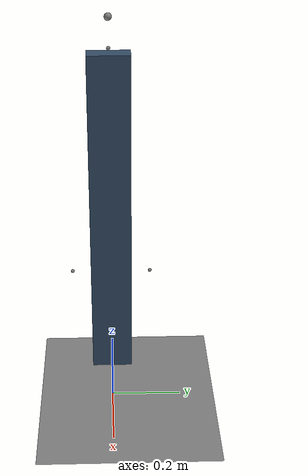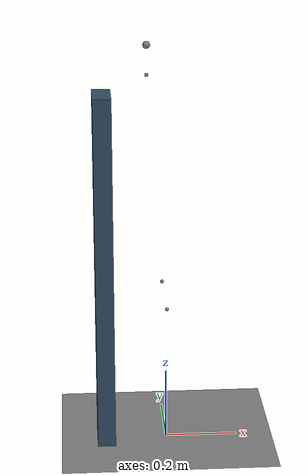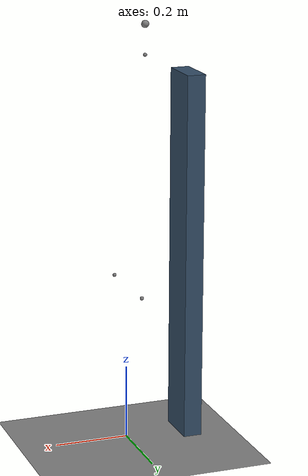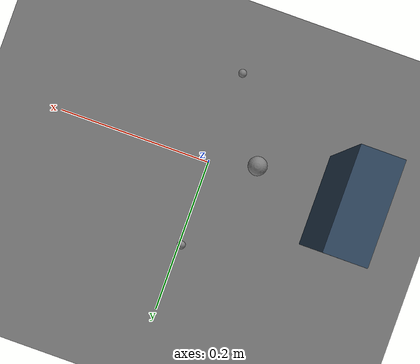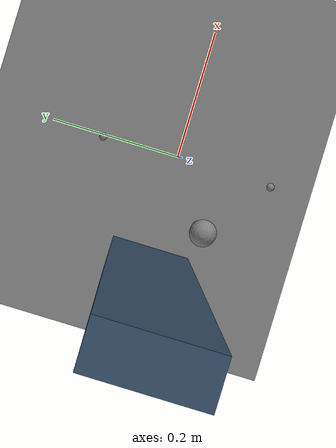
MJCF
<?xml version='1.0' encoding='utf-8'?>
<mujoco model="robobuddy-asimov-actuator-mounted-v1">
  <compiler angle="radian" autolimits="true" />
  <option integrator="implicitfast" solver="Newton" iterations="10" ls_iterations="20" timestep="0.0025" noslip_iterations="5" impratio="10" cone="elliptic" />
  <default>
    <joint frictionloss="0" />
    <default class="motor">
      <joint damping="0" />
    </default>
    <default class="passive_upper">
      <joint damping="15.0" stiffness="80.0" springref="0" />
    </default>
    <default class="visual">
      <geom contype="0" conaffinity="0" group="2" density="0" />
    </default>
    <default class="collision">
      <geom group="3" rgba=".2 .6 .2 .3" type="capsule" contype="1" conaffinity="1" priority="1" condim="6" />
      <default class="foot_capsule">
        <geom type="capsule" size="0.005" condim="3" friction="0.6" />
      </default>
      <default class="body_capsule">
        <geom type="capsule" size="0.05" />
      </default>
    </default>
  </default>
  <visual>
    <global offwidth="1920" offheight="1080" />
  </visual>
  <worldbody>
    <light pos="1 0 3.5" dir="0 0 -1" directional="true" />
    <geom name="floor" size="0 0 0.05" type="plane" friction="1.2 0.5 0.1" condim="3" />
    <light directional="true" diffuse=".4 .4 .4" specular="0.1 0.1 0.1" pos="0 0 5.0" dir="0 0 -1" castshadow="false" />
    <light directional="true" diffuse=".6 .6 .6" specular="0.2 0.2 0.2" pos="0 0 4" dir="0 0 -1" />
    <body name="pelvis_link" pos="0 0 1.05" quat="1 0 0 0">
      <site name="imu_in_pelvis" size="0.01" pos="-0.05 0 0.08" />
      <inertial pos="-0.0540918323179141 -3.48259522403486E-05 -0.0156255182184312" mass="3.50691251175897" fullinertia="0.00552189690363016 0.00626668820315558 0.00504655399919599 4.55841164433384E-06 -7.80273388403568E-05 1.10177467151231E-07" />
      <geom name="pelvis_collision" class="body_capsule" fromto="-0.04 0 0.025 -0.04 0 -0.05" size="0.04" />
      <body name="left_hip_pitch_link" pos="-0.052 0.0675 -0.044045" quat="1.0 0.0 0.0 0.0">
        <joint name="left_hip_pitch_joint" type="hinge" ref="0.0" class="motor" range="-2.094395 1" axis="0 1 0" armature="0.095625" actuatorfrcrange="-45 45" />
        <inertial pos="0.00172895433511948 0.0360563262466087 0.000569266739481308" mass="1.05630112217695" fullinertia="0.00069232989080039 0.000812587075023366 0.000753380131267806 -3.57661961446218E-05 1.84003368216204E-06 1.2003147635279E-05" />
        <geom name="left_hip_pitch_link_collision" class="body_capsule" fromto="0 0.02 0 0 0.04 0" size="0.04" />
        <body name="left_hip_roll_link" pos="0.0422501 0.0400002759400924 0" quat="1.0 0.0 0.0 0.0">
          <joint name="left_hip_roll_joint" type="hinge" ref="0.0" class="motor" range="-0.785398 0.785398" axis="1 0 0" armature="0.11" actuatorfrcrange="-45 45" />
          <inertial pos="-0.0115541390699202 -0.000334827946236529 -0.0294101852668513" mass="0.414368139397033" fullinertia="0.000265394006141893 0.000357453871035062 0.000234474271498986 2.21514388143389E-06 -0.000115781041690773 2.9843892878895E-06" />
          <body name="left_hip_yaw_link" pos="-0.04225 0.00700892571037183 -0.0515254787497069" quat="1.0 0.0 0.0 0.0">
            <joint name="left_hip_yaw_joint" type="hinge" ref="0.0" class="motor" range="-0.785398 0.785398" axis="0 0 -1" armature="0.038" actuatorfrcrange="-28 28" />
            <inertial pos="0.00107948197036896 -0.00598402495023986 -0.120813380372135" mass="1.86657016365838" fullinertia="0.00341632805621387 0.00356015908605875 0.00137524371897195 1.12872354708907E-05 2.89779040236103E-05 -0.000119761896219478" />
            <geom name="left_hip_yaw_link_collision" class="body_capsule" fromto="0 0 -0.05 0 0 -0.12" size="0.04" />
            <body name="left_knee_link" pos="0.00151572865906509 -0.00657389099150725 -0.218432672960972" quat="1.0 0.0 0.0 0.0">
              <joint name="left_knee_joint" type="hinge" ref="0.0" class="motor" range="0 1.5" axis="0 1 0" armature="0.0339552" actuatorfrcrange="-45 45" />
              <inertial pos="-0.00201649310424907 7.42548168203294E-05 -0.0903747361690406" mass="2.39114151142398" fullinertia="0.00962172059584378 0.00975314355528496 0.00233095236145198 9.87646823720659E-06 -0.000645140064794513 -7.94058688078323E-06" />
              <geom name="left_knee_link_collision" class="body_capsule" fromto="0 0 -0.04 0 0 -0.22" size="0.04" />
              <body name="left_ankle_pitch_link" pos="-0.00151572865907394 -0.000435034718868785 -0.272344184376349" quat="1.0 0.0 0.0 0.0">
                <joint name="left_ankle_pitch_joint" type="hinge" ref="0.0" class="motor" range="-0.35 0.35" axis="0 1 0" armature="0.0565056" actuatorfrcrange="-40 40" />
                <inertial pos="-0.00117927040588633 -3.07019113465756E-08 -0.00617619235424882" mass="0.273090119400173" fullinertia="6.4266131977376E-05 8.09944211394154E-05 4.71927841328634E-05 -2.40573155297429E-10 -1.07534511935557E-06 -2.30560104829896E-10" />
                <body name="left_ankle_roll_link" pos="-0.0015 0 -0.01" quat="1.0 0.0 0.0 0.0">
                  <joint name="left_ankle_roll_joint" type="hinge" ref="0.0" class="motor" range="-0.1 0.1" axis="-1 0 0" armature="0.0565056" actuatorfrcrange="-17 17" />
                  <inertial pos="0.0602 0 -0.0174" mass="0.44468" fullinertia="0.00022344252 0.00109591095 0.00118799414 0.00000001433 -0.00002496970 0.00000001266" />
                  <site name="left_foot" pos="0.05 0 -0.025" />
                  <geom name="left_foot1_collision" class="foot_capsule" type="sphere" pos="-0.045  0.020 -0.029" />
                  <geom name="left_foot2_collision" class="foot_capsule" type="sphere" pos="-0.045 -0.020 -0.029" />
                  <geom name="left_foot3_collision" class="foot_capsule" type="sphere" pos=" 0.122  0.028 -0.029" />
                  <geom name="left_foot4_collision" class="foot_capsule" type="sphere" pos=" 0.122 -0.028 -0.029" />
                </body>
              </body>
            </body>
          </body>
        </body>
      </body>
      <body name="right_hip_pitch_link" pos="-0.0519999999999999 -0.0675 -0.0440449999999999" quat="1.0 0.0 0.0 0.0">
        <joint name="right_hip_pitch_joint" type="hinge" ref="0.0" class="motor" range="-1 2.094395" axis="0 -1 0" armature="0.095625" actuatorfrcrange="-45 45" />
        <inertial pos="0.00172891543963928 -0.0360560777469901 0.000568830845064178" mass="1.05629742879001" fullinertia="0.000692329136191241 0.00081258255865219 0.000753384108654712 3.57650372725171E-05 1.84099820196341E-06 -1.20075387086281E-05" />
        <geom name="right_hip_pitch_link_collision" class="body_capsule" fromto="0 -0.02 0 0 -0.04 0" size="0.04" />
        <body name="right_hip_roll_link" pos="0.04225 -0.04 0" quat="1.0 0.0 0.0 0.0">
          <joint name="right_hip_roll_joint" type="hinge" ref="0.0" class="motor" range="-0.785398 0.785398" axis="1 0 0" armature="0.11" actuatorfrcrange="-45 45" />
          <inertial pos="-0.0115435673741928 0.000361458713869084 -0.0293858908276063" mass="0.414825000619808" fullinertia="0.000265893227185752 0.000357734750091647 0.000234803924170236 -2.33135893268163E-06 -0.000115883966141926 -3.23262089994153E-06" />
          <body name="right_hip_yaw_link" pos="-0.04225 -0.0064271 -0.051601" quat="1.0 0.0 0.0 0.0">
            <joint name="right_hip_yaw_joint" type="hinge" ref="0.0" class="motor" range="-0.785398 0.785398" axis="0 0 -1" armature="0.038" actuatorfrcrange="-28 28" />
            <inertial pos="0.00107595248047253 0.00540534566623335 -0.120743834565757" mass="1.8664722044964" fullinertia="0.00341588734528437 0.00355990015451933 0.00137525272174307 -1.17597783272052E-05 2.91733595317294E-05 0.000119715671332145" />
            <geom name="right_hip_yaw_link_collision" class="body_capsule" fromto="0 0 -0.05 0 0 -0.12" size="0.04" />
            <body name="right_knee_link" pos="0.0015157 0.0059921 -0.21836" quat="1.0 0.0 0.0 0.0">
              <joint name="right_knee_joint" type="hinge" ref="0.0" class="motor" range="-1.5 0" axis="0 -1 0" armature="0.0339552" actuatorfrcrange="-45 45" />
              <inertial pos="-0.00197598661350925 2.02939875821456E-05 -0.0903745806396054" mass="2.3911016761251" fullinertia="0.00962148210798745 0.00975287232675755 0.00233090346766722 -9.87533742828758E-06 -0.000645094690013399 7.98428941561102E-06" />
              <geom name="right_knee_link_collision" class="body_capsule" fromto="0 0 -0.04 0 0 -0.22" size="0.04" />
              <body name="right_ankle_pitch_link" pos="-0.0015157 0.00053505 -0.27234" quat="1.0 0.0 0.0 0.0">
                <joint name="right_ankle_pitch_joint" type="hinge" ref="0.0" class="motor" range="-0.35 0.35" axis="0 -1 0" armature="0.0565056" actuatorfrcrange="-40 40" />
                <inertial pos="-0.0011793692600079 6.86716864900516E-08 -0.00617614582815973" mass="0.27308917159726" fullinertia="6.42659452121946E-05 8.0994434836127E-05 4.71926012791403E-05 -1.02281345760111E-10 -1.07558770084606E-06 3.52701184357211E-10" />
                <body name="right_ankle_roll_link" pos="-0.0015 0 -0.01" quat="1.0 0.0 0.0 0.0">
                  <joint name="right_ankle_roll_joint" type="hinge" ref="0.0" class="motor" range="-0.1 0.1" axis="-1 0 0" armature="0.0565056" actuatorfrcrange="-17 17" />
                  <inertial pos="0.0602 0 -0.0174" mass="0.44468" fullinertia="0.00022344252 0.00109591095 0.00118799414 0.00000001433 -0.00002496970 0.00000001266" />
                  <site name="right_foot" pos="0.05 0 -0.025" />
                  <geom name="right_foot1_collision" class="foot_capsule" type="sphere" pos="-0.045  0.020 -0.029" />
                  <geom name="right_foot2_collision" class="foot_capsule" type="sphere" pos="-0.045 -0.020 -0.029" />
                  <geom name="right_foot3_collision" class="foot_capsule" type="sphere" pos=" 0.122  0.028 -0.029" />
                  <geom name="right_foot4_collision" class="foot_capsule" type="sphere" pos=" 0.122 -0.028 -0.029" />
                </body>
              </body>
            </body>
          </body>
        </body>
      </body>
      <body name="waist_yaw_link" pos="-0.052 0 0.074755" quat="1.0 0.0 0.0 0.0">
        <joint name="waist_yaw_joint" type="hinge" ref="0.0" class="motor" range="-1.570796 1.570796" axis="0 0 1" armature="0.095625" actuatorfrcrange="-40 40" />
        <inertial pos="-0.00699393636668848 -2.50812125574469E-05 0.20403987801712" mass="8.20850158063177" fullinertia="0.0498139710698645 0.0397024417978058 0.0321266580275838 -2.41115308804516E-05 0.00319230504367261 -1.46092909936038E-05" />
        <geom name="waist_yaw_link_collision" class="body_capsule" fromto="0 0 0.05 0 0 0.30" size="0.06" />
        <body name="neck_yaw_link" pos="-0.0165987745492247 0 0.37816702955645" quat="1.0 0.0 0.0 0.0">
          <inertial pos="-0.000232155049410487 -0.000686932388815892 0.0356746841654919" mass="0.53278930532821" fullinertia="0.000264347242952148 0.000248771564307738 0.00020193091979106 -3.48413513698088E-12 1.21262681406962E-05 -8.87364722806786E-11" />
          <body name="neck_pitch_link" pos="0 0 0.0373499999999998" quat="1.0 0.0 0.0 0.0">
            <inertial pos="0.0123887754708077 0.000861952115589091 0.0425189272866255" mass="0.394055609177456" fullinertia="0.00128726711862714 0.00173087070402671 0.00145145415000959 3.55175311514234E-07 0.000142554637413333 -3.99783179861009E-07" />
            <geom name="neck_pitch_link_collision" class="body_capsule" fromto="0.03 0 0 0.03 0 0.04" size="0.05" />
          </body>
        </body>
        <body name="right_shoulder_pitch_link" pos="-0.0262128253533167 -0.0964999999999998 0.261140483320038" quat="1.0 0.0 0.0 0.0">
          <joint name="right_shoulder_pitch_joint" type="hinge" ref="0.0" class="motor" range="-0.872665 3.141593" axis="0 -1 0" armature="0.11" actuatorfrcrange="-30 30" />
          <inertial pos="0.000129810971033137 -0.0157921829692733 -1.88616919207796E-05" mass="0.599156105726411" fullinertia="0.000330318150839075 0.000418513262392796 0.000421384143645388 -2.56885268466272E-07 2.44063757734843E-09 -3.98664414578714E-10" />
          <body name="right_shoulder_roll_link" pos="0 -0.0653532232325457 -6.33413504113611E-05" quat="1.0 0.0 0.0 0.0">
            <joint name="right_shoulder_roll_joint" type="hinge" ref="0.0" class="motor" range="0.000000 1.570796" axis="-1 0 0" armature="0.0339552" actuatorfrcrange="-25 25" />
            <inertial pos="0.000114177624818339 -4.35142145794876E-05 -0.0373100689697469" mass="1.31322237625579" fullinertia="0.00163280464556345 0.00149148477281863 0.000740785347833217 4.4229503860379E-07 9.017972571202E-07 3.09076703769813E-06" />
            <geom name="right_shoulder_roll_link_collision" class="body_capsule" fromto="0 -0.01 -0.02 0 -0.01 -0.11" size="0.035" />
            <body name="right_shoulder_yaw_link" pos="0 0 -0.128998749978416" quat="1.0 0.0 0.0 0.0">
              <joint name="right_shoulder_yaw_joint" type="hinge" ref="0.0" class="motor" range="-1.570796 1.570796" axis="0 0 -1" armature="0.038" actuatorfrcrange="-20 20" />
              <inertial pos="-0.000325066122385375 0.000320503955106993 -0.0759404985004545" mass="0.712261755331765" fullinertia="0.000502664342430343 0.000516259495504905 0.000310678003766854 1.03874826912854E-07 3.84898679655994E-07 -9.28406240892842E-07" />
              <body name="right_elbow_link" pos="0 0 -0.0966012999998862" quat="1.0 0.0 0.0 0.0">
                <joint name="right_elbow_joint" type="hinge" ref="-0.785398" class="motor" range="-2.443461 0.000000" axis="0 1 0" armature="0.0282528" actuatorfrcrange="-12 12" />
                <inertial pos="0.0523755985403483 -9.84304228299482E-05 -0.0444425911778195" mass="0.662314258886328" fullinertia="0.000331709977441628 0.000418432878642283 0.00036781692231096 1.14378770241915E-07 5.58706757420512E-05 -9.7404268443382E-08" />
                <geom name="right_elbow_link_collision" class="body_capsule" fromto="0 -0.01 0 0.09 -0.01 -0.07" size="0.03" />
                <body name="right_wrist_yaw_link" pos="0.0865630220726329 0 -0.0726349998945883" quat="1.0 0.0 0.0 0.0">
                  <joint name="right_wrist_yaw_joint" type="hinge" ref="0.0" class="motor" range="-3.141593 3.141593" axis="0.766044443118981 0 -0.642787609686536" armature="0.0282528" actuatorfrcrange="-12 12" />
                  <inertial pos="0.00382289129248181 8.36540312021405E-09 -0.00320778585722904" mass="0.0580595106779709" fullinertia="1.18803001723724E-05 8.8546080362749E-06 1.07999391749915E-05 3.73796867740447E-08 -3.06346018877142E-06 4.45423430732884E-08" />
                </body>
              </body>
            </body>
          </body>
        </body>
        <body name="left_shoulder_pitch_link" pos="-0.0262128253533159 0.0965000000000001 0.261140483320038" quat="1.0 0.0 0.0 0.0">
          <joint name="left_shoulder_pitch_joint" type="hinge" ref="0.0" class="motor" range="-3.141593 0.872665" axis="0 1 0" armature="0.11" actuatorfrcrange="-30 30" />
          <inertial pos="0.000159889483543337 0.015791587441366 -3.48203187672258E-07" mass="0.599157136550892" fullinertia="0.000330315921264664 0.000418517858443934 0.000421379165524238 2.45535699672275E-07 -2.28363178468585E-09 -1.01854853365967E-08" />
          <body name="left_shoulder_roll_link" pos="0.000100000000001779 0.0653532232325531 0" quat="1.0 0.0 0.0 0.0">
            <joint name="left_shoulder_roll_joint" type="hinge" ref="0.0" class="motor" range="-1.570796 0.000000" axis="-1 0 0" armature="0.0339552" actuatorfrcrange="-25 25" />
            <inertial pos="0.00011401838763982 4.3288067202385E-05 -0.0373100597490998" mass="1.3132281302001" fullinertia="0.0016328136443199 0.00149147489643918 0.000740809790351389 -4.3632231123889E-07 9.06646221352916E-07 -3.08459314459227E-06" />
            <geom name="left_shoulder_roll_link_collision" class="body_capsule" fromto="0 0.01 -0.02 0 0.01 -0.11" size="0.035" />
            <body name="left_shoulder_yaw_link" pos="0 0 -0.128998749978194" quat="1.0 0.0 0.0 0.0">
              <joint name="left_shoulder_yaw_joint" type="hinge" ref="0.0" class="motor" range="-1.570796 1.570796" axis="0 0 -1" armature="0.038" actuatorfrcrange="-20 20" />
              <inertial pos="-0.000330000636187981 0.000136036715123772 -0.0753619101773522" mass="0.712261755331765" fullinertia="0.000501395820111453 0.000514632797400514 0.000310276967015705 -1.0357243024011E-07 3.85724001728373E-07 9.7896997590059E-07" />
              <body name="left_elbow_link" pos="0 0 -0.0963013000001065" quat="1.0 0.0 0.0 0.0">
                <joint name="left_elbow_joint" type="hinge" ref="0.785398" class="motor" range="0.000000 2.443461" axis="0 -1 0" armature="0.0282528" actuatorfrcrange="-12 12" />
                <inertial pos="0.0523756419047112 9.84723348319283E-05 -0.0444426425125844" mass="0.662317601299901" fullinertia="0.000331709518475136 0.000418430298151774 0.000367817844214662 -1.15265452395985E-07 5.58734246475865E-05 9.67795385366457E-08" />
                <geom name="left_elbow_link_collision" class="body_capsule" fromto="0 0.01 0 0.09 0.01 -0.07" size="0.03" />
                <body name="left_wrist_yaw_link" pos="0.0865630220759433 0 -0.0726349998946764" quat="1.0 0.0 0.0 0.0">
                  <joint name="left_wrist_yaw_joint" type="hinge" ref="0.0" class="motor" range="-3.141593 3.141593" axis="0.766044443118927 0 -0.642787609686601" armature="0.0282528" actuatorfrcrange="-12 12" />
                  <inertial pos="0.00382289324376062 1.7394452961339E-08 -0.00320774203668756" mass="0.058058790654763" fullinertia="1.20674298017884E-05 8.40130139890341E-06 1.10658034937549E-05 1.83335345917148E-07 -2.8402536561247E-06 2.18479301532613E-07" />
                </body>
              </body>
            </body>
          </body>
        </body>
      </body>
      <site name="pelvis_site" pos="-0.05 0 0" quat="1 0 0 0" />
      <camera name="front_camera" mode="track" fovy="60.0" quat="0.5 0.5 0.5 0.5" pos="2.5 0.0 0.7" />
      <camera name="side_camera" mode="track" fovy="45.0" quat="0.368 0.295 -0.552 -0.688" pos="-3.0 2.0 1.5" />
      <camera name="back_camera" mode="track" fovy="60.0" quat="0.533 0.465 -0.465 -0.533" pos="-4.0 0.0 1.2" />
      <camera name="direct_side_camera" mode="track" fovy="60.0" quat="0.707 0.707 0 0" pos="0 -3.0 0.7" />
      <camera name="direct_behind_camera" mode="track" fovy="60.0" quat="0.5 0.5 -0.5 -0.5" pos="-3.0 0 0.7" />
    </body>
    <geom name="asimov_declared_mount" type="box" pos="-0.17 0 0.50" size="0.025 0.06 0.50" contype="0" conaffinity="0" rgba=".2 .3 .4 1" />
  </worldbody>
  <contact>
    <exclude body1="pelvis_link" body2="right_hip_pitch_link" />
    <exclude body1="right_hip_pitch_link" body2="right_hip_roll_link" />
    <exclude body1="right_hip_roll_link" body2="right_hip_yaw_link" />
    <exclude body1="right_hip_yaw_link" body2="right_knee_link" />
    <exclude body1="right_knee_link" body2="right_ankle_pitch_link" />
    <exclude body1="right_ankle_pitch_link" body2="right_ankle_roll_link" />
    <exclude body1="pelvis_link" body2="left_hip_pitch_link" />
    <exclude body1="left_hip_pitch_link" body2="left_hip_roll_link" />
    <exclude body1="left_hip_roll_link" body2="left_hip_yaw_link" />
    <exclude body1="left_hip_yaw_link" body2="left_knee_link" />
    <exclude body1="left_knee_link" body2="left_ankle_pitch_link" />
    <exclude body1="left_ankle_pitch_link" body2="left_ankle_roll_link" />
    <exclude body1="pelvis_link" body2="waist_yaw_link" />
    <exclude body1="waist_yaw_link" body2="neck_yaw_link" />
    <exclude body1="neck_yaw_link" body2="neck_pitch_link" />
    <exclude body1="waist_yaw_link" body2="right_shoulder_pitch_link" />
    <exclude body1="right_shoulder_pitch_link" body2="right_shoulder_roll_link" />
    <exclude body1="right_shoulder_roll_link" body2="right_shoulder_yaw_link" />
    <exclude body1="right_shoulder_yaw_link" body2="right_elbow_link" />
    <exclude body1="right_elbow_link" body2="right_wrist_yaw_link" />
    <exclude body1="waist_yaw_link" body2="left_shoulder_pitch_link" />
    <exclude body1="left_shoulder_pitch_link" body2="left_shoulder_roll_link" />
    <exclude body1="left_shoulder_roll_link" body2="left_shoulder_yaw_link" />
    <exclude body1="left_shoulder_yaw_link" body2="left_elbow_link" />
    <exclude body1="left_elbow_link" body2="left_wrist_yaw_link" />
  </contact>
  <sensor>
    <gyro name="imu_ang_vel" site="imu_in_pelvis" />
    <velocimeter name="imu_lin_vel" site="imu_in_pelvis" />
    <accelerometer name="imu_lin_acc" site="imu_in_pelvis" />
    <framequat name="imu_quat" objtype="site" objname="imu_in_pelvis" />
    <subtreeangmom name="root_angmom" body="pelvis_link" />
  </sensor>
  <visual>
    <headlight diffuse="0.6 0.6 0.6" ambient="0.1 0.1 0.1" specular="0.9 0.9 0.9" />
    <rgba haze="0.15 0.25 0.35 1" />
    <global azimuth="-140" elevation="-20" />
  </visual>
  <actuator>
    <motor name="left_hip_pitch_joint" joint="left_hip_pitch_joint" gear="1" ctrlrange="-45 45" forcerange="-45 45" />
    <motor name="left_hip_roll_joint" joint="left_hip_roll_joint" gear="1" ctrlrange="-45 45" forcerange="-45 45" />
    <motor name="left_hip_yaw_joint" joint="left_hip_yaw_joint" gear="1" ctrlrange="-28 28" forcerange="-28 28" />
    <motor name="left_knee_joint" joint="left_knee_joint" gear="1" ctrlrange="-45 45" forcerange="-45 45" />
    <motor name="left_ankle_pitch_joint" joint="left_ankle_pitch_joint" gear="1" ctrlrange="-40 40" forcerange="-40 40" />
    <motor name="left_ankle_roll_joint" joint="left_ankle_roll_joint" gear="1" ctrlrange="-17 17" forcerange="-17 17" />
    <motor name="right_hip_pitch_joint" joint="right_hip_pitch_joint" gear="1" ctrlrange="-45 45" forcerange="-45 45" />
    <motor name="right_hip_roll_joint" joint="right_hip_roll_joint" gear="1" ctrlrange="-45 45" forcerange="-45 45" />
    <motor name="right_hip_yaw_joint" joint="right_hip_yaw_joint" gear="1" ctrlrange="-28 28" forcerange="-28 28" />
    <motor name="right_knee_joint" joint="right_knee_joint" gear="1" ctrlrange="-45 45" forcerange="-45 45" />
    <motor name="right_ankle_pitch_joint" joint="right_ankle_pitch_joint" gear="1" ctrlrange="-40 40" forcerange="-40 40" />
    <motor name="right_ankle_roll_joint" joint="right_ankle_roll_joint" gear="1" ctrlrange="-17 17" forcerange="-17 17" />
    <motor name="waist_yaw_joint" joint="waist_yaw_joint" gear="1" ctrlrange="-40 40" forcerange="-40 40" />
    <motor name="right_shoulder_pitch_joint" joint="right_shoulder_pitch_joint" gear="1" ctrlrange="-30 30" forcerange="-30 30" />
    <motor name="right_shoulder_roll_joint" joint="right_shoulder_roll_joint" gear="1" ctrlrange="-25 25" forcerange="-25 25" />
    <motor name="right_shoulder_yaw_joint" joint="right_shoulder_yaw_joint" gear="1" ctrlrange="-20 20" forcerange="-20 20" />
    <motor name="right_elbow_joint" joint="right_elbow_joint" gear="1" ctrlrange="-12 12" forcerange="-12 12" />
    <motor name="right_wrist_yaw_joint" joint="right_wrist_yaw_joint" gear="1" ctrlrange="-12 12" forcerange="-12 12" />
    <motor name="left_shoulder_pitch_joint" joint="left_shoulder_pitch_joint" gear="1" ctrlrange="-30 30" forcerange="-30 30" />
    <motor name="left_shoulder_roll_joint" joint="left_shoulder_roll_joint" gear="1" ctrlrange="-25 25" forcerange="-25 25" />
    <motor name="left_shoulder_yaw_joint" joint="left_shoulder_yaw_joint" gear="1" ctrlrange="-20 20" forcerange="-20 20" />
    <motor name="left_elbow_joint" joint="left_elbow_joint" gear="1" ctrlrange="-12 12" forcerange="-12 12" />
    <motor name="left_wrist_yaw_joint" joint="left_wrist_yaw_joint" gear="1" ctrlrange="-12 12" forcerange="-12 12" />
  </actuator>
  <keyframe>
    <key name="declared_initial" qpos="0 0 0 0 0 0 0 0 0 0 0 0 0 0 0 0 -0.785398 0 0 0 0 0.785398 0" />
  </keyframe>
</mujoco>
